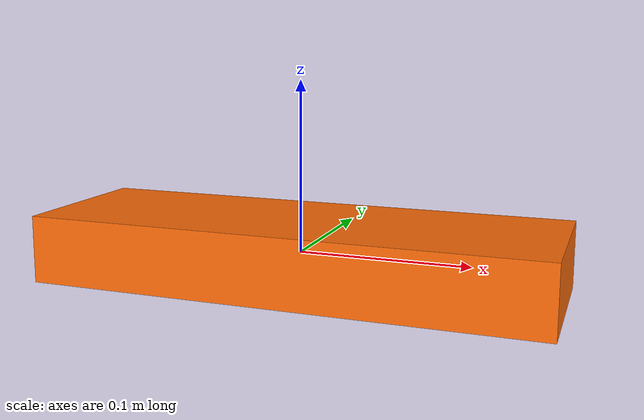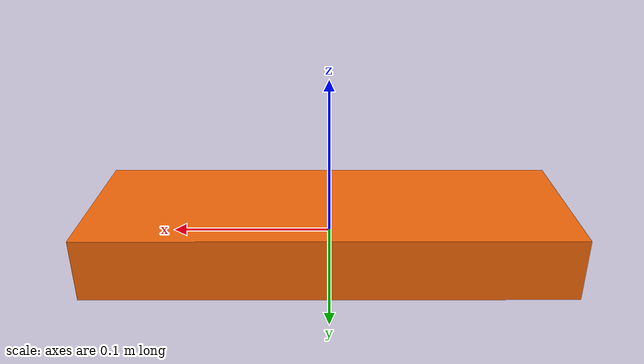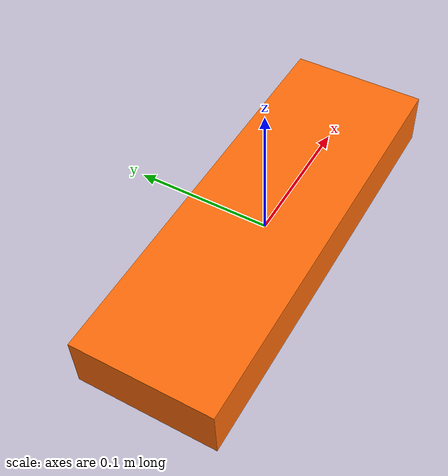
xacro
<?xml version="1.0"?>

<robot name="transmitter" xmlns:xacro="http://www.ros.org/wiki/xacro">
  <xacro:arg name="id" default="0" />
	<xacro:arg name="frame_id" default="world" />

	<!-- Base Link -->
  <link name="transmitter">
    <collision>
      <origin xyz="0.0 0.0 0.0" rpy="0 0 0"/>
      <geometry>
        <box size="0.3 0.1 0.04"/>
      </geometry>
    </collision>

    <visual>
      <origin xyz="0 0 0.0" rpy="0 0 0"/>
      <geometry>
        <box size="0.3 0.1 0.04"/>
      </geometry>
      <material name="orange"/>
    </visual>

    <inertial>
      <origin xyz="0 0 1" rpy="0 0 0"/>
      <mass value="1"/>
      <inertia
        ixx="1.0" ixy="0.0" ixz="0.0"
        iyy="1.0" iyz="0.0"
        izz="1.0"/>
    </inertial>
  </link>

  <material name="orange">
    <color rgba="${255/255} ${108/255} ${10/255} 1.0"/>
  </material>

	<gazebo reference="transmitter">
    <material>Gazebo/Orange</material>
  </gazebo>

	<gazebo>
		<plugin name="arva_transmitter" filename="libarva_sim_transmitter.so">
      <id>$(arg id)</id>
			<frame_id>$(arg frame_id)</frame_id>
		</plugin>
    <static>true</static>
  </gazebo>
</robot>
